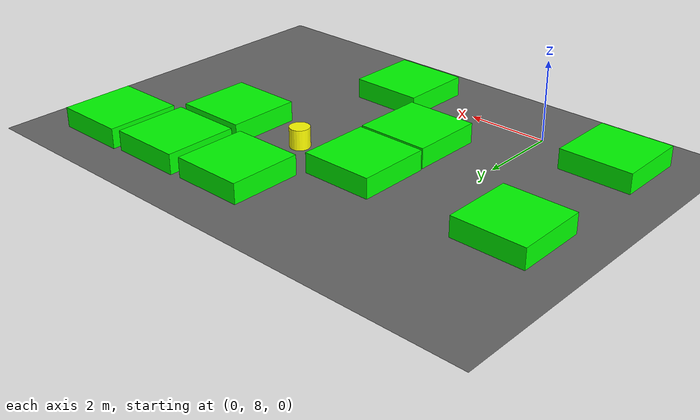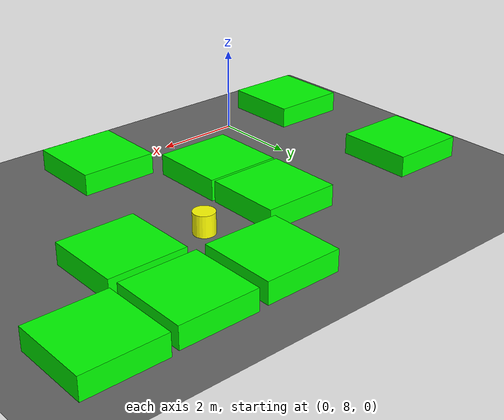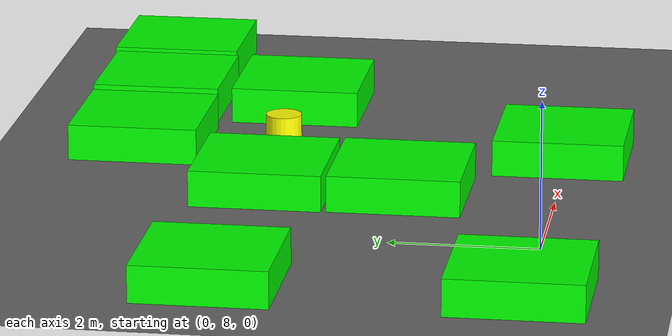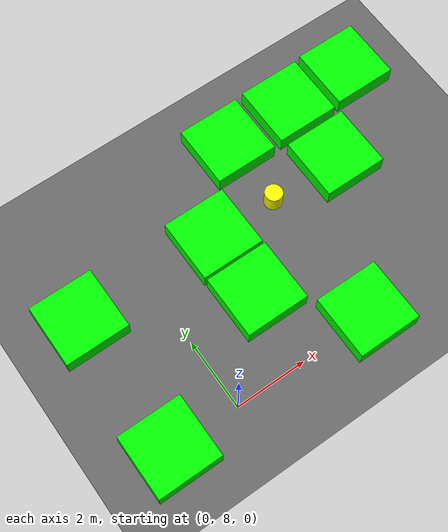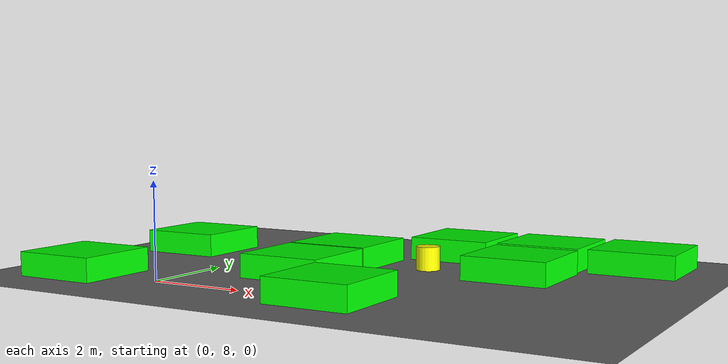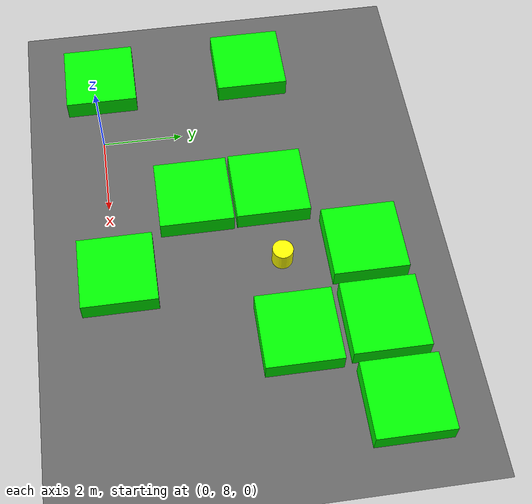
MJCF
<mujoco model="lvl5_deadend_obs10_dmid_depth2_seed2084">
    <compiler angle="degree" coordinate="local" inertiafromgeom="true"/>
    <option integrator="RK4" timestep="0.01"/>

    <asset>
        <texture builtin="gradient" height="100" rgb1="0.6 0.8 1" rgb2="0 0 0" type="skybox" width="100"/>
        <texture name="floor_texture" type="2d" builtin="checker" width="100" height="100" rgb1="0 0 0" rgb2="0.8 0.8 0.8"/>
        <material name="MatPlane" reflectance="0.5" shininess="1" specular="1" texrepeat="10 10" texture="floor_texture"/>
    </asset>

    <!-- Excluding the contact between the agent and the goal, and the agent and the floor -->
    <contact>
        <exclude body1="agent" body2="goal"/>
        <exclude body1 = "agent" body2 = "floor"/>
    </contact>

    <extension>
        <plugin plugin = "mujoco.pid">
            <instance name = "pid1">
                <config key="kp" value="2"/>
                <config key="ki" value="0"/>
                <config key="kd" value="55"/>
            </instance>
        </plugin>
    </extension>

    <worldbody>
        <light cutoff="100" diffuse="1 1 1" dir="-0 0 -1.3" directional="true" exponent="1" pos="0 0 1.3" specular=".1 .1 .1"/>
        <body name="floor" pos="0 0 0">
            <geom name="floor_geom" type="plane" size="20 20 0.1" material="MatPlane"/>
        </body>

                <body name="goal" pos="0.0000 0.0000 0">
            <geom name="goal_geom" type="plane" size="0.5 0.5 1" pos="0 0 0" rgba="1 0 0 1"/>
        </body>

                <body name="agent" pos="4.0000 12.0000 0.250">
            <joint name="j1" type="slide" axis ="1 0 0 "/>
            <joint name="j2" type="slide" axis ="0 1 0 "/>
            <geom name="agent_geom" type="cylinder" size="0.25 0.25 0.250" rgba="1 1 0 1"/>
        </body>

        <body name="obstacle1" pos="3.9338 13.9790 0.250">  <geom name="obstacle1_geom" type="box" size="0.9000 0.9000 0.250" rgba="0 1 0 1"/></body>
        <body name="obstacle2" pos="5.9816 14.0267 0.250">  <geom name="obstacle2_geom" type="box" size="0.9000 0.9000 0.250" rgba="0 1 0 1"/></body>
        <body name="obstacle3" pos="7.9756 14.0898 0.250">  <geom name="obstacle3_geom" type="box" size="0.9000 0.9000 0.250" rgba="0 1 0 1"/></body>
        <body name="obstacle4" pos="-1.9606 12.0119 0.250">  <geom name="obstacle4_geom" type="box" size="0.9000 0.9000 0.250" rgba="0 1 0 1"/></body>
        <body name="obstacle5" pos="2.0580 11.9605 0.250">  <geom name="obstacle5_geom" type="box" size="0.9000 0.9000 0.250" rgba="0 1 0 1"/></body>
        <body name="obstacle6" pos="6.0479 12.0344 0.250">  <geom name="obstacle6_geom" type="box" size="0.9000 0.9000 0.250" rgba="0 1 0 1"/></body>
        <body name="obstacle7" pos="2.0806 10.0912 0.250">  <geom name="obstacle7_geom" type="box" size="0.9000 0.9000 0.250" rgba="0 1 0 1"/></body>
        <body name="obstacle8" pos="-1.9310 8.0533 0.250">  <geom name="obstacle8_geom" type="box" size="0.9000 0.9000 0.250" rgba="0 1 0 1"/></body>
        <body name="obstacle9" pos="4.0083 8.0778 0.250">  <geom name="obstacle9_geom" type="box" size="0.9000 0.9000 0.250" rgba="0 1 0 1"/></body>

    </worldbody>

    <sensor>
<!-- SENSORS -->

        <distance name="dist1" geom1="agent_geom" geom2="obstacle1_geom" cutoff="1.5"/>
        <distance name="dist2" geom1="agent_geom" geom2="obstacle2_geom" cutoff="1.5"/>
        <distance name="dist3" geom1="agent_geom" geom2="obstacle3_geom" cutoff="1.5"/>
        <distance name="dist4" geom1="agent_geom" geom2="obstacle4_geom" cutoff="1.5"/>
        <distance name="dist5" geom1="agent_geom" geom2="obstacle5_geom" cutoff="1.5"/>
        <distance name="dist6" geom1="agent_geom" geom2="obstacle6_geom" cutoff="1.5"/>
        <distance name="dist7" geom1="agent_geom" geom2="obstacle7_geom" cutoff="1.5"/>
        <distance name="dist8" geom1="agent_geom" geom2="obstacle8_geom" cutoff="1.5"/>
        <distance name="dist9" geom1="agent_geom" geom2="obstacle9_geom" cutoff="1.5"/>
</sensor>

    <actuator>
        <plugin joint="j1" plugin="mujoco.pid" instance="pid1" />
        <plugin joint="j2" plugin="mujoco.pid" instance="pid1"/>
    </actuator>
</mujoco>
